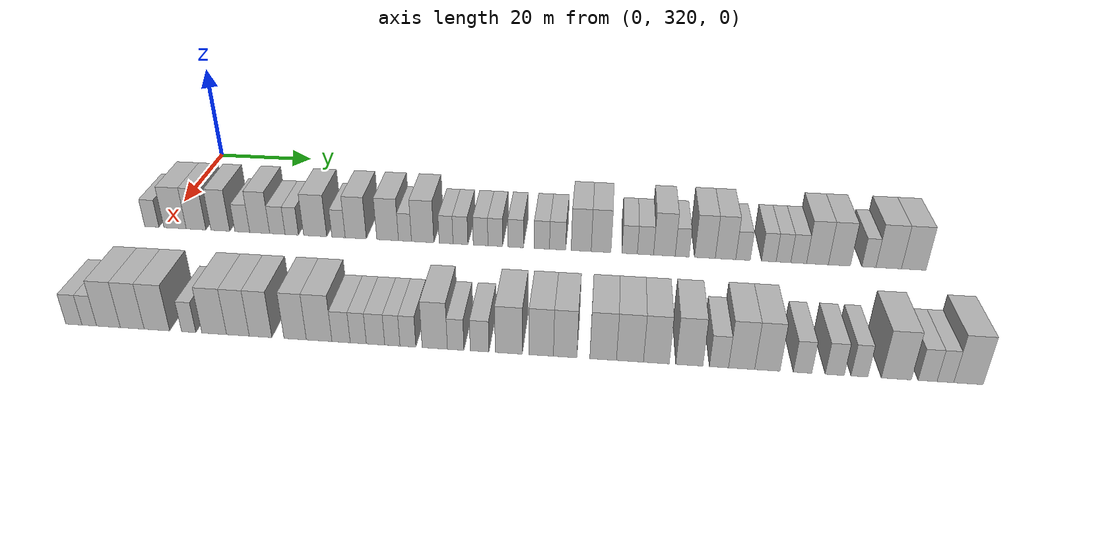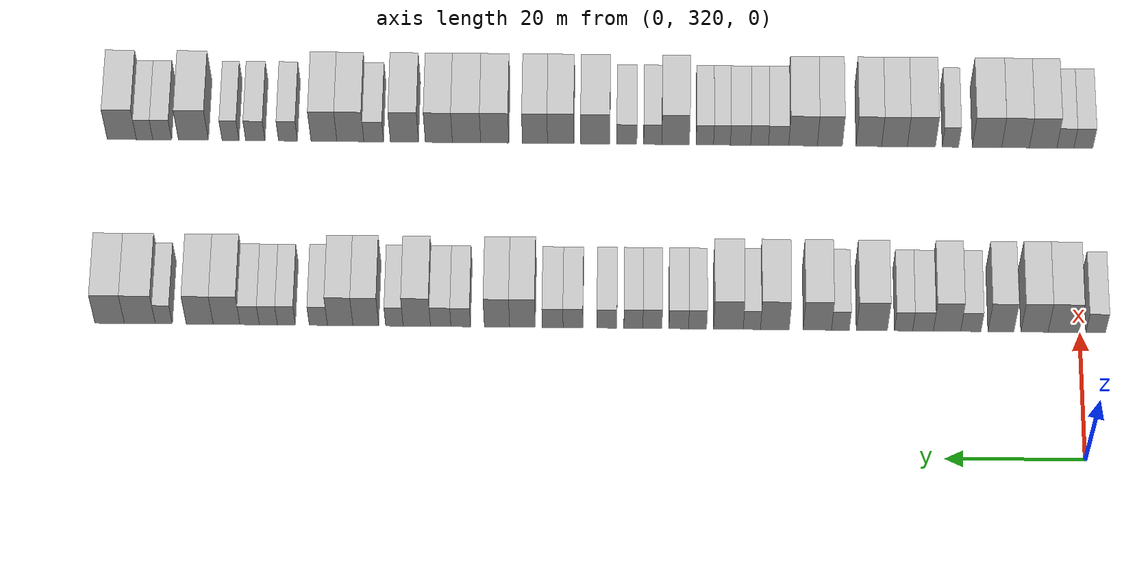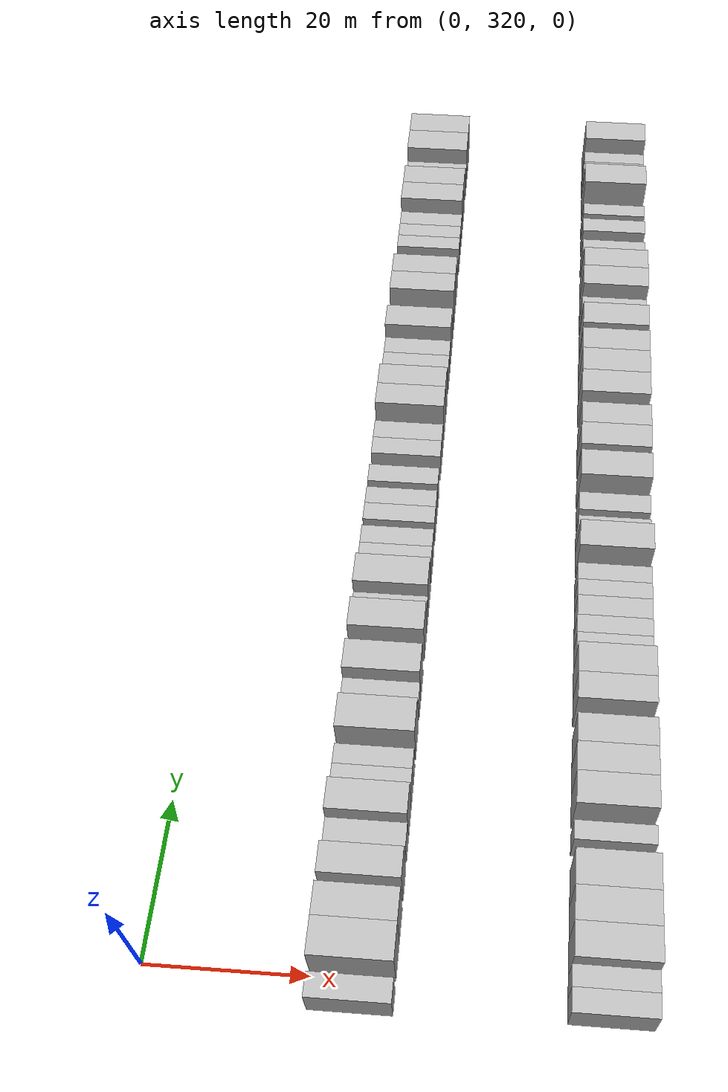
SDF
<sdf version="1.6">
 <world name="default">
  <model name="building_202">
   <static>1</static>
   <pose>25.0000 317.7668 0 0.000000 0.000000 0.000000</pose>
   <link name="link">
    <pose>0 0 3.00 0 0 0</pose>
    <collision name="collision"><geometry><box><size>10.0000 2.8190 6.0000</size></box></geometry></collision>
    <visual name="visual">
     <cast_shadows>0</cast_shadows>
     <geometry><box><size>10.0000 2.8190 6.0000</size></box></geometry>
     <material>
      <script>
       <uri>model://HANNAS_wall/materials/scripts</uri>
       <uri>model://HANNAS_wall/materials/textures</uri>
       <name>vrc/HANNAS_wall</name>
      </script>
     </material>
    </visual>
   </link>
  </model>
  <model name="building_203">
   <static>1</static>
   <pose>25.0000 322.3898 0 0.000000 0.000000 0.000000</pose>
   <link name="link">
    <pose>0 0 4.50 0 0 0</pose>
    <collision name="collision"><geometry><box><size>10.0000 4.4269 9.0000</size></box></geometry></collision>
    <visual name="visual">
     <cast_shadows>0</cast_shadows>
     <geometry><box><size>10.0000 4.4269 9.0000</size></box></geometry>
     <material>
      <script>
       <uri>model://HANNAS_wall/materials/scripts</uri>
       <uri>model://HANNAS_wall/materials/textures</uri>
       <name>vrc/HANNAS_wall</name>
      </script>
     </material>
    </visual>
   </link>
  </model>
  <model name="building_204">
   <static>1</static>
   <pose>25.0000 326.5541 0 0.000000 0.000000 0.000000</pose>
   <link name="link">
    <pose>0 0 4.50 0 0 0</pose>
    <collision name="collision"><geometry><box><size>10.0000 3.9018 9.0000</size></box></geometry></collision>
    <visual name="visual">
     <cast_shadows>0</cast_shadows>
     <geometry><box><size>10.0000 3.9018 9.0000</size></box></geometry>
     <material>
      <script>
       <uri>model://HANNAS_wall/materials/scripts</uri>
       <uri>model://HANNAS_wall/materials/textures</uri>
       <name>vrc/HANNAS_wall</name>
      </script>
     </material>
    </visual>
   </link>
  </model>
  <model name="building_205">
   <static>1</static>
   <pose>25.0000 331.3632 0 0.000000 0.000000 0.000000</pose>
   <link name="link">
    <pose>0 0 4.50 0 0 0</pose>
    <collision name="collision"><geometry><box><size>10.0000 3.7164 9.0000</size></box></geometry></collision>
    <visual name="visual">
     <cast_shadows>0</cast_shadows>
     <geometry><box><size>10.0000 3.7164 9.0000</size></box></geometry>
     <material>
      <script>
       <uri>model://HANNAS_wall/materials/scripts</uri>
       <uri>model://HANNAS_wall/materials/textures</uri>
       <name>vrc/HANNAS_wall</name>
      </script>
     </material>
    </visual>
   </link>
  </model>
  <model name="building_206">
   <static>1</static>
   <pose>25.0000 335.6766 0 0.000000 0.000000 0.000000</pose>
   <link name="link">
    <pose>0 0 3.00 0 0 0</pose>
    <collision name="collision"><geometry><box><size>10.0000 2.9102 6.0000</size></box></geometry></collision>
    <visual name="visual">
     <cast_shadows>0</cast_shadows>
     <geometry><box><size>10.0000 2.9102 6.0000</size></box></geometry>
     <material>
      <script>
       <uri>model://HANNAS_wall/materials/scripts</uri>
       <uri>model://HANNAS_wall/materials/textures</uri>
       <name>vrc/HANNAS_wall</name>
      </script>
     </material>
    </visual>
   </link>
  </model>
  <model name="building_207">
   <static>1</static>
   <pose>25.0000 339.0856 0 0.000000 0.000000 0.000000</pose>
   <link name="link">
    <pose>0 0 4.50 0 0 0</pose>
    <collision name="collision"><geometry><box><size>10.0000 3.9078 9.0000</size></box></geometry></collision>
    <visual name="visual">
     <cast_shadows>0</cast_shadows>
     <geometry><box><size>10.0000 3.9078 9.0000</size></box></geometry>
     <material>
      <script>
       <uri>model://HANNAS_wall/materials/scripts</uri>
       <uri>model://HANNAS_wall/materials/textures</uri>
       <name>vrc/HANNAS_wall</name>
      </script>
     </material>
    </visual>
   </link>
  </model>
  <model name="building_208">
   <static>1</static>
   <pose>25.0000 342.5338 0 0.000000 0.000000 0.000000</pose>
   <link name="link">
    <pose>0 0 3.00 0 0 0</pose>
    <collision name="collision"><geometry><box><size>10.0000 2.9886 6.0000</size></box></geometry></collision>
    <visual name="visual">
     <cast_shadows>0</cast_shadows>
     <geometry><box><size>10.0000 2.9886 6.0000</size></box></geometry>
     <material>
      <script>
       <uri>model://HANNAS_wall/materials/scripts</uri>
       <uri>model://HANNAS_wall/materials/textures</uri>
       <name>vrc/HANNAS_wall</name>
      </script>
     </material>
    </visual>
   </link>
  </model>
  <model name="building_209">
   <static>1</static>
   <pose>25.0000 345.3355 0 0.000000 0.000000 0.000000</pose>
   <link name="link">
    <pose>0 0 3.00 0 0 0</pose>
    <collision name="collision"><geometry><box><size>10.0000 2.6150 6.0000</size></box></geometry></collision>
    <visual name="visual">
     <cast_shadows>0</cast_shadows>
     <geometry><box><size>10.0000 2.6150 6.0000</size></box></geometry>
     <material>
      <script>
       <uri>model://HANNAS_wall/materials/scripts</uri>
       <uri>model://HANNAS_wall/materials/textures</uri>
       <name>vrc/HANNAS_wall</name>
      </script>
     </material>
    </visual>
   </link>
  </model>
  <model name="building_210">
   <static>1</static>
   <pose>25.0000 349.8770 0 0.000000 0.000000 0.000000</pose>
   <link name="link">
    <pose>0 0 4.50 0 0 0</pose>
    <collision name="collision"><geometry><box><size>10.0000 4.4678 9.0000</size></box></geometry></collision>
    <visual name="visual">
     <cast_shadows>0</cast_shadows>
     <geometry><box><size>10.0000 4.4678 9.0000</size></box></geometry>
     <material>
      <script>
       <uri>model://HANNAS_wall/materials/scripts</uri>
       <uri>model://HANNAS_wall/materials/textures</uri>
       <name>vrc/HANNAS_wall</name>
      </script>
     </material>
    </visual>
   </link>
  </model>
  <model name="building_211">
   <static>1</static>
   <pose>25.0000 354.3916 0 0.000000 0.000000 0.000000</pose>
   <link name="link">
    <pose>0 0 3.00 0 0 0</pose>
    <collision name="collision"><geometry><box><size>10.0000 2.5615 6.0000</size></box></geometry></collision>
    <visual name="visual">
     <cast_shadows>0</cast_shadows>
     <geometry><box><size>10.0000 2.5615 6.0000</size></box></geometry>
     <material>
      <script>
       <uri>model://HANNAS_wall/materials/scripts</uri>
       <uri>model://HANNAS_wall/materials/textures</uri>
       <name>vrc/HANNAS_wall</name>
      </script>
     </material>
    </visual>
   </link>
  </model>
  <model name="building_212">
   <static>1</static>
   <pose>25.0000 357.7027 0 0.000000 0.000000 0.000000</pose>
   <link name="link">
    <pose>0 0 4.50 0 0 0</pose>
    <collision name="collision"><geometry><box><size>10.0000 4.0606 9.0000</size></box></geometry></collision>
    <visual name="visual">
     <cast_shadows>0</cast_shadows>
     <geometry><box><size>10.0000 4.0606 9.0000</size></box></geometry>
     <material>
      <script>
       <uri>model://HANNAS_wall/materials/scripts</uri>
       <uri>model://HANNAS_wall/materials/textures</uri>
       <name>vrc/HANNAS_wall</name>
      </script>
     </material>
    </visual>
   </link>
  </model>
  <model name="building_213">
   <static>1</static>
   <pose>25.0000 363.8024 0 0.000000 0.000000 0.000000</pose>
   <link name="link">
    <pose>0 0 4.50 0 0 0</pose>
    <collision name="collision"><geometry><box><size>10.0000 4.1388 9.0000</size></box></geometry></collision>
    <visual name="visual">
     <cast_shadows>0</cast_shadows>
     <geometry><box><size>10.0000 4.1388 9.0000</size></box></geometry>
     <material>
      <script>
       <uri>model://HANNAS_wall/materials/scripts</uri>
       <uri>model://HANNAS_wall/materials/textures</uri>
       <name>vrc/HANNAS_wall</name>
      </script>
     </material>
    </visual>
   </link>
  </model>
  <model name="building_214">
   <static>1</static>
   <pose>25.0000 367.1085 0 0.000000 0.000000 0.000000</pose>
   <link name="link">
    <pose>0 0 3.00 0 0 0</pose>
    <collision name="collision"><geometry><box><size>10.0000 2.4736 6.0000</size></box></geometry></collision>
    <visual name="visual">
     <cast_shadows>0</cast_shadows>
     <geometry><box><size>10.0000 2.4736 6.0000</size></box></geometry>
     <material>
      <script>
       <uri>model://HANNAS_wall/materials/scripts</uri>
       <uri>model://HANNAS_wall/materials/textures</uri>
       <name>vrc/HANNAS_wall</name>
      </script>
     </material>
    </visual>
   </link>
  </model>
  <model name="building_215">
   <static>1</static>
   <pose>25.0000 370.4704 0 0.000000 0.000000 0.000000</pose>
   <link name="link">
    <pose>0 0 4.50 0 0 0</pose>
    <collision name="collision"><geometry><box><size>10.0000 4.2502 9.0000</size></box></geometry></collision>
    <visual name="visual">
     <cast_shadows>0</cast_shadows>
     <geometry><box><size>10.0000 4.2502 9.0000</size></box></geometry>
     <material>
      <script>
       <uri>model://HANNAS_wall/materials/scripts</uri>
       <uri>model://HANNAS_wall/materials/textures</uri>
       <name>vrc/HANNAS_wall</name>
      </script>
     </material>
    </visual>
   </link>
  </model>
  <model name="building_216">
   <static>1</static>
   <pose>25.0000 374.8957 0 0.000000 0.000000 0.000000</pose>
   <link name="link">
    <pose>0 0 3.00 0 0 0</pose>
    <collision name="collision"><geometry><box><size>10.0000 2.6004 6.0000</size></box></geometry></collision>
    <visual name="visual">
     <cast_shadows>0</cast_shadows>
     <geometry><box><size>10.0000 2.6004 6.0000</size></box></geometry>
     <material>
      <script>
       <uri>model://HANNAS_wall/materials/scripts</uri>
       <uri>model://HANNAS_wall/materials/textures</uri>
       <name>vrc/HANNAS_wall</name>
      </script>
     </material>
    </visual>
   </link>
  </model>
  <model name="building_217">
   <static>1</static>
   <pose>25.0000 377.5998 0 0.000000 0.000000 0.000000</pose>
   <link name="link">
    <pose>0 0 3.00 0 0 0</pose>
    <collision name="collision"><geometry><box><size>10.0000 2.8076 6.0000</size></box></geometry></collision>
    <visual name="visual">
     <cast_shadows>0</cast_shadows>
     <geometry><box><size>10.0000 2.8076 6.0000</size></box></geometry>
     <material>
      <script>
       <uri>model://HANNAS_wall/materials/scripts</uri>
       <uri>model://HANNAS_wall/materials/textures</uri>
       <name>vrc/HANNAS_wall</name>
      </script>
     </material>
    </visual>
   </link>
  </model>
  <model name="building_218">
   <static>1</static>
   <pose>25.0000 381.3769 0 0.000000 0.000000 0.000000</pose>
   <link name="link">
    <pose>0 0 3.00 0 0 0</pose>
    <collision name="collision"><geometry><box><size>10.0000 2.7467 6.0000</size></box></geometry></collision>
    <visual name="visual">
     <cast_shadows>0</cast_shadows>
     <geometry><box><size>10.0000 2.7467 6.0000</size></box></geometry>
     <material>
      <script>
       <uri>model://HANNAS_wall/materials/scripts</uri>
       <uri>model://HANNAS_wall/materials/textures</uri>
       <name>vrc/HANNAS_wall</name>
      </script>
     </material>
    </visual>
   </link>
  </model>
  <model name="building_219">
   <static>1</static>
   <pose>25.0000 384.1134 0 0.000000 0.000000 0.000000</pose>
   <link name="link">
    <pose>0 0 3.00 0 0 0</pose>
    <collision name="collision"><geometry><box><size>10.0000 2.7263 6.0000</size></box></geometry></collision>
    <visual name="visual">
     <cast_shadows>0</cast_shadows>
     <geometry><box><size>10.0000 2.7263 6.0000</size></box></geometry>
     <material>
      <script>
       <uri>model://HANNAS_wall/materials/scripts</uri>
       <uri>model://HANNAS_wall/materials/textures</uri>
       <name>vrc/HANNAS_wall</name>
      </script>
     </material>
    </visual>
   </link>
  </model>
  <model name="building_220">
   <static>1</static>
   <pose>25.0000 387.9141 0 0.000000 0.000000 0.000000</pose>
   <link name="link">
    <pose>0 0 3.00 0 0 0</pose>
    <collision name="collision"><geometry><box><size>10.0000 2.8752 6.0000</size></box></geometry></collision>
    <visual name="visual">
     <cast_shadows>0</cast_shadows>
     <geometry><box><size>10.0000 2.8752 6.0000</size></box></geometry>
     <material>
      <script>
       <uri>model://HANNAS_wall/materials/scripts</uri>
       <uri>model://HANNAS_wall/materials/textures</uri>
       <name>vrc/HANNAS_wall</name>
      </script>
     </material>
    </visual>
   </link>
  </model>
  <model name="building_221">
   <static>1</static>
   <pose>25.0000 392.7794 0 0.000000 0.000000 0.000000</pose>
   <link name="link">
    <pose>0 0 3.00 0 0 0</pose>
    <collision name="collision"><geometry><box><size>10.0000 2.8553 6.0000</size></box></geometry></collision>
    <visual name="visual">
     <cast_shadows>0</cast_shadows>
     <geometry><box><size>10.0000 2.8553 6.0000</size></box></geometry>
     <material>
      <script>
       <uri>model://HANNAS_wall/materials/scripts</uri>
       <uri>model://HANNAS_wall/materials/textures</uri>
       <name>vrc/HANNAS_wall</name>
      </script>
     </material>
    </visual>
   </link>
  </model>
  <model name="building_222">
   <static>1</static>
   <pose>25.0000 395.7024 0 0.000000 0.000000 0.000000</pose>
   <link name="link">
    <pose>0 0 3.00 0 0 0</pose>
    <collision name="collision"><geometry><box><size>10.0000 2.9906 6.0000</size></box></geometry></collision>
    <visual name="visual">
     <cast_shadows>0</cast_shadows>
     <geometry><box><size>10.0000 2.9906 6.0000</size></box></geometry>
     <material>
      <script>
       <uri>model://HANNAS_wall/materials/scripts</uri>
       <uri>model://HANNAS_wall/materials/textures</uri>
       <name>vrc/HANNAS_wall</name>
      </script>
     </material>
    </visual>
   </link>
  </model>
  <model name="building_223">
   <static>1</static>
   <pose>25.0000 400.0385 0 0.000000 0.000000 0.000000</pose>
   <link name="link">
    <pose>0 0 4.50 0 0 0</pose>
    <collision name="collision"><geometry><box><size>10.0000 3.6818 9.0000</size></box></geometry></collision>
    <visual name="visual">
     <cast_shadows>0</cast_shadows>
     <geometry><box><size>10.0000 3.6818 9.0000</size></box></geometry>
     <material>
      <script>
       <uri>model://HANNAS_wall/materials/scripts</uri>
       <uri>model://HANNAS_wall/materials/textures</uri>
       <name>vrc/HANNAS_wall</name>
      </script>
     </material>
    </visual>
   </link>
  </model>
  <model name="building_224">
   <static>1</static>
   <pose>25.0000 403.6879 0 0.000000 0.000000 0.000000</pose>
   <link name="link">
    <pose>0 0 4.50 0 0 0</pose>
    <collision name="collision"><geometry><box><size>10.0000 3.6170 9.0000</size></box></geometry></collision>
    <visual name="visual">
     <cast_shadows>0</cast_shadows>
     <geometry><box><size>10.0000 3.6170 9.0000</size></box></geometry>
     <material>
      <script>
       <uri>model://HANNAS_wall/materials/scripts</uri>
       <uri>model://HANNAS_wall/materials/textures</uri>
       <name>vrc/HANNAS_wall</name>
      </script>
     </material>
    </visual>
   </link>
  </model>
  <model name="building_225">
   <static>1</static>
   <pose>25.0000 408.9027 0 0.000000 0.000000 0.000000</pose>
   <link name="link">
    <pose>0 0 3.00 0 0 0</pose>
    <collision name="collision"><geometry><box><size>10.0000 2.8125 6.0000</size></box></geometry></collision>
    <visual name="visual">
     <cast_shadows>0</cast_shadows>
     <geometry><box><size>10.0000 2.8125 6.0000</size></box></geometry>
     <material>
      <script>
       <uri>model://HANNAS_wall/materials/scripts</uri>
       <uri>model://HANNAS_wall/materials/textures</uri>
       <name>vrc/HANNAS_wall</name>
      </script>
     </material>
    </visual>
   </link>
  </model>
  <model name="building_226">
   <static>1</static>
   <pose>25.0000 411.7821 0 0.000000 0.000000 0.000000</pose>
   <link name="link">
    <pose>0 0 3.00 0 0 0</pose>
    <collision name="collision"><geometry><box><size>10.0000 2.9464 6.0000</size></box></geometry></collision>
    <visual name="visual">
     <cast_shadows>0</cast_shadows>
     <geometry><box><size>10.0000 2.9464 6.0000</size></box></geometry>
     <material>
      <script>
       <uri>model://HANNAS_wall/materials/scripts</uri>
       <uri>model://HANNAS_wall/materials/textures</uri>
       <name>vrc/HANNAS_wall</name>
      </script>
     </material>
    </visual>
   </link>
  </model>
  <model name="building_227">
   <static>1</static>
   <pose>25.0000 415.2182 0 0.000000 0.000000 0.000000</pose>
   <link name="link">
    <pose>0 0 4.50 0 0 0</pose>
    <collision name="collision"><geometry><box><size>10.0000 3.9257 9.0000</size></box></geometry></collision>
    <visual name="visual">
     <cast_shadows>0</cast_shadows>
     <geometry><box><size>10.0000 3.9257 9.0000</size></box></geometry>
     <material>
      <script>
       <uri>model://HANNAS_wall/materials/scripts</uri>
       <uri>model://HANNAS_wall/materials/textures</uri>
       <name>vrc/HANNAS_wall</name>
      </script>
     </material>
    </visual>
   </link>
  </model>
  <model name="building_228">
   <static>1</static>
   <pose>25.0000 418.4320 0 0.000000 0.000000 0.000000</pose>
   <link name="link">
    <pose>0 0 3.00 0 0 0</pose>
    <collision name="collision"><geometry><box><size>10.0000 2.5021 6.0000</size></box></geometry></collision>
    <visual name="visual">
     <cast_shadows>0</cast_shadows>
     <geometry><box><size>10.0000 2.5021 6.0000</size></box></geometry>
     <material>
      <script>
       <uri>model://HANNAS_wall/materials/scripts</uri>
       <uri>model://HANNAS_wall/materials/textures</uri>
       <name>vrc/HANNAS_wall</name>
      </script>
     </material>
    </visual>
   </link>
  </model>
  <model name="building_229">
   <static>1</static>
   <pose>25.0000 422.5367 0 0.000000 0.000000 0.000000</pose>
   <link name="link">
    <pose>0 0 4.50 0 0 0</pose>
    <collision name="collision"><geometry><box><size>10.0000 3.7072 9.0000</size></box></geometry></collision>
    <visual name="visual">
     <cast_shadows>0</cast_shadows>
     <geometry><box><size>10.0000 3.7072 9.0000</size></box></geometry>
     <material>
      <script>
       <uri>model://HANNAS_wall/materials/scripts</uri>
       <uri>model://HANNAS_wall/materials/textures</uri>
       <name>vrc/HANNAS_wall</name>
      </script>
     </material>
    </visual>
   </link>
  </model>
  <model name="building_230">
   <static>1</static>
   <pose>25.0000 426.2238 0 0.000000 0.000000 0.000000</pose>
   <link name="link">
    <pose>0 0 4.50 0 0 0</pose>
    <collision name="collision"><geometry><box><size>10.0000 3.6669 9.0000</size></box></geometry></collision>
    <visual name="visual">
     <cast_shadows>0</cast_shadows>
     <geometry><box><size>10.0000 3.6669 9.0000</size></box></geometry>
     <material>
      <script>
       <uri>model://HANNAS_wall/materials/scripts</uri>
       <uri>model://HANNAS_wall/materials/textures</uri>
       <name>vrc/HANNAS_wall</name>
      </script>
     </material>
    </visual>
   </link>
  </model>
  <model name="building_231">
   <static>1</static>
   <pose>25.0000 429.3576 0 0.000000 0.000000 0.000000</pose>
   <link name="link">
    <pose>0 0 3.00 0 0 0</pose>
    <collision name="collision"><geometry><box><size>10.0000 2.6007 6.0000</size></box></geometry></collision>
    <visual name="visual">
     <cast_shadows>0</cast_shadows>
     <geometry><box><size>10.0000 2.6007 6.0000</size></box></geometry>
     <material>
      <script>
       <uri>model://HANNAS_wall/materials/scripts</uri>
       <uri>model://HANNAS_wall/materials/textures</uri>
       <name>vrc/HANNAS_wall</name>
      </script>
     </material>
    </visual>
   </link>
  </model>
  <model name="building_232">
   <static>1</static>
   <pose>25.0000 433.9490 0 0.000000 0.000000 0.000000</pose>
   <link name="link">
    <pose>0 0 3.00 0 0 0</pose>
    <collision name="collision"><geometry><box><size>10.0000 2.5821 6.0000</size></box></geometry></collision>
    <visual name="visual">
     <cast_shadows>0</cast_shadows>
     <geometry><box><size>10.0000 2.5821 6.0000</size></box></geometry>
     <material>
      <script>
       <uri>model://HANNAS_wall/materials/scripts</uri>
       <uri>model://HANNAS_wall/materials/textures</uri>
       <name>vrc/HANNAS_wall</name>
      </script>
     </material>
    </visual>
   </link>
  </model>
  <model name="building_233">
   <static>1</static>
   <pose>25.0000 436.5443 0 0.000000 0.000000 0.000000</pose>
   <link name="link">
    <pose>0 0 3.00 0 0 0</pose>
    <collision name="collision"><geometry><box><size>10.0000 2.6086 6.0000</size></box></geometry></collision>
    <visual name="visual">
     <cast_shadows>0</cast_shadows>
     <geometry><box><size>10.0000 2.6086 6.0000</size></box></geometry>
     <material>
      <script>
       <uri>model://HANNAS_wall/materials/scripts</uri>
       <uri>model://HANNAS_wall/materials/textures</uri>
       <name>vrc/HANNAS_wall</name>
      </script>
     </material>
    </visual>
   </link>
  </model>
  <model name="building_234">
   <static>1</static>
   <pose>25.0000 439.2364 0 0.000000 0.000000 0.000000</pose>
   <link name="link">
    <pose>0 0 3.00 0 0 0</pose>
    <collision name="collision"><geometry><box><size>10.0000 2.7756 6.0000</size></box></geometry></collision>
    <visual name="visual">
     <cast_shadows>0</cast_shadows>
     <geometry><box><size>10.0000 2.7756 6.0000</size></box></geometry>
     <material>
      <script>
       <uri>model://HANNAS_wall/materials/scripts</uri>
       <uri>model://HANNAS_wall/materials/textures</uri>
       <name>vrc/HANNAS_wall</name>
      </script>
     </material>
    </visual>
   </link>
  </model>
  <model name="building_235">
   <static>1</static>
   <pose>25.0000 442.5438 0 0.000000 0.000000 0.000000</pose>
   <link name="link">
    <pose>0 0 4.50 0 0 0</pose>
    <collision name="collision"><geometry><box><size>10.0000 3.8392 9.0000</size></box></geometry></collision>
    <visual name="visual">
     <cast_shadows>0</cast_shadows>
     <geometry><box><size>10.0000 3.8392 9.0000</size></box></geometry>
     <material>
      <script>
       <uri>model://HANNAS_wall/materials/scripts</uri>
       <uri>model://HANNAS_wall/materials/textures</uri>
       <name>vrc/HANNAS_wall</name>
      </script>
     </material>
    </visual>
   </link>
  </model>
  <model name="building_236">
   <static>1</static>
   <pose>25.0000 446.4011 0 0.000000 0.000000 0.000000</pose>
   <link name="link">
    <pose>0 0 4.50 0 0 0</pose>
    <collision name="collision"><geometry><box><size>10.0000 3.8756 9.0000</size></box></geometry></collision>
    <visual name="visual">
     <cast_shadows>0</cast_shadows>
     <geometry><box><size>10.0000 3.8756 9.0000</size></box></geometry>
     <material>
      <script>
       <uri>model://HANNAS_wall/materials/scripts</uri>
       <uri>model://HANNAS_wall/materials/textures</uri>
       <name>vrc/HANNAS_wall</name>
      </script>
     </material>
    </visual>
   </link>
  </model>
  <model name="building_237">
   <static>1</static>
   <pose>25.0000 451.5603 0 0.000000 0.000000 0.000000</pose>
   <link name="link">
    <pose>0 0 3.00 0 0 0</pose>
    <collision name="collision"><geometry><box><size>10.0000 2.4427 6.0000</size></box></geometry></collision>
    <visual name="visual">
     <cast_shadows>0</cast_shadows>
     <geometry><box><size>10.0000 2.4427 6.0000</size></box></geometry>
     <material>
      <script>
       <uri>model://HANNAS_wall/materials/scripts</uri>
       <uri>model://HANNAS_wall/materials/textures</uri>
       <name>vrc/HANNAS_wall</name>
      </script>
     </material>
    </visual>
   </link>
  </model>
  <model name="building_238">
   <static>1</static>
   <pose>25.0000 455.0014 0 0.000000 0.000000 0.000000</pose>
   <link name="link">
    <pose>0 0 4.50 0 0 0</pose>
    <collision name="collision"><geometry><box><size>10.0000 4.4395 9.0000</size></box></geometry></collision>
    <visual name="visual">
     <cast_shadows>0</cast_shadows>
     <geometry><box><size>10.0000 4.4395 9.0000</size></box></geometry>
     <material>
      <script>
       <uri>model://HANNAS_wall/materials/scripts</uri>
       <uri>model://HANNAS_wall/materials/textures</uri>
       <name>vrc/HANNAS_wall</name>
      </script>
     </material>
    </visual>
   </link>
  </model>
  <model name="building_239">
   <static>1</static>
   <pose>25.0000 459.3410 0 0.000000 0.000000 0.000000</pose>
   <link name="link">
    <pose>0 0 4.50 0 0 0</pose>
    <collision name="collision"><geometry><box><size>10.0000 4.2398 9.0000</size></box></geometry></collision>
    <visual name="visual">
     <cast_shadows>0</cast_shadows>
     <geometry><box><size>10.0000 4.2398 9.0000</size></box></geometry>
     <material>
      <script>
       <uri>model://HANNAS_wall/materials/scripts</uri>
       <uri>model://HANNAS_wall/materials/textures</uri>
       <name>vrc/HANNAS_wall</name>
      </script>
     </material>
    </visual>
   </link>
  </model>
  <model name="building_443">
   <static>1</static>
   <pose>55.0000 318.2949 0 0.000000 0.000000 0.000000</pose>
   <link name="link">
    <pose>0 0 3.00 0 0 0</pose>
    <collision name="collision"><geometry><box><size>10.0000 2.7762 6.0000</size></box></geometry></collision>
    <visual name="visual">
     <cast_shadows>0</cast_shadows>
     <geometry><box><size>10.0000 2.7762 6.0000</size></box></geometry>
     <material>
      <script>
       <uri>model://HANNAS_wall/materials/scripts</uri>
       <uri>model://HANNAS_wall/materials/textures</uri>
       <name>vrc/HANNAS_wall</name>
      </script>
     </material>
    </visual>
   </link>
  </model>
  <model name="building_444">
   <static>1</static>
   <pose>55.0000 320.9313 0 0.000000 0.000000 0.000000</pose>
   <link name="link">
    <pose>0 0 3.00 0 0 0</pose>
    <collision name="collision"><geometry><box><size>10.0000 2.4966 6.0000</size></box></geometry></collision>
    <visual name="visual">
     <cast_shadows>0</cast_shadows>
     <geometry><box><size>10.0000 2.4966 6.0000</size></box></geometry>
     <material>
      <script>
       <uri>model://HANNAS_wall/materials/scripts</uri>
       <uri>model://HANNAS_wall/materials/textures</uri>
       <name>vrc/HANNAS_wall</name>
      </script>
     </material>
    </visual>
   </link>
  </model>
  <model name="building_445">
   <static>1</static>
   <pose>55.0000 324.2052 0 0.000000 0.000000 0.000000</pose>
   <link name="link">
    <pose>0 0 4.50 0 0 0</pose>
    <collision name="collision"><geometry><box><size>10.0000 4.0511 9.0000</size></box></geometry></collision>
    <visual name="visual">
     <cast_shadows>0</cast_shadows>
     <geometry><box><size>10.0000 4.0511 9.0000</size></box></geometry>
     <material>
      <script>
       <uri>model://HANNAS_wall/materials/scripts</uri>
       <uri>model://HANNAS_wall/materials/textures</uri>
       <name>vrc/HANNAS_wall</name>
      </script>
     </material>
    </visual>
   </link>
  </model>
  <model name="building_446">
   <static>1</static>
   <pose>55.0000 328.2565 0 0.000000 0.000000 0.000000</pose>
   <link name="link">
    <pose>0 0 4.50 0 0 0</pose>
    <collision name="collision"><geometry><box><size>10.0000 4.0516 9.0000</size></box></geometry></collision>
    <visual name="visual">
     <cast_shadows>0</cast_shadows>
     <geometry><box><size>10.0000 4.0516 9.0000</size></box></geometry>
     <material>
      <script>
       <uri>model://HANNAS_wall/materials/scripts</uri>
       <uri>model://HANNAS_wall/materials/textures</uri>
       <name>vrc/HANNAS_wall</name>
      </script>
     </material>
    </visual>
   </link>
  </model>
  <model name="building_447">
   <static>1</static>
   <pose>55.0000 332.4387 0 0.000000 0.000000 0.000000</pose>
   <link name="link">
    <pose>0 0 4.50 0 0 0</pose>
    <collision name="collision"><geometry><box><size>10.0000 4.3127 9.0000</size></box></geometry></collision>
    <visual name="visual">
     <cast_shadows>0</cast_shadows>
     <geometry><box><size>10.0000 4.3127 9.0000</size></box></geometry>
     <material>
      <script>
       <uri>model://HANNAS_wall/materials/scripts</uri>
       <uri>model://HANNAS_wall/materials/textures</uri>
       <name>vrc/HANNAS_wall</name>
      </script>
     </material>
    </visual>
   </link>
  </model>
  <model name="building_448">
   <static>1</static>
   <pose>55.0000 337.7976 0 0.000000 0.000000 0.000000</pose>
   <link name="link">
    <pose>0 0 3.00 0 0 0</pose>
    <collision name="collision"><geometry><box><size>10.0000 2.4050 6.0000</size></box></geometry></collision>
    <visual name="visual">
     <cast_shadows>0</cast_shadows>
     <geometry><box><size>10.0000 2.4050 6.0000</size></box></geometry>
     <material>
      <script>
       <uri>model://HANNAS_wall/materials/scripts</uri>
       <uri>model://HANNAS_wall/materials/textures</uri>
       <name>vrc/HANNAS_wall</name>
      </script>
     </material>
    </visual>
   </link>
  </model>
  <model name="building_449">
   <static>1</static>
   <pose>55.0000 342.0600 0 0.000000 0.000000 0.000000</pose>
   <link name="link">
    <pose>0 0 4.50 0 0 0</pose>
    <collision name="collision"><geometry><box><size>10.0000 4.1200 9.0000</size></box></geometry></collision>
    <visual name="visual">
     <cast_shadows>0</cast_shadows>
     <geometry><box><size>10.0000 4.1200 9.0000</size></box></geometry>
     <material>
      <script>
       <uri>model://HANNAS_wall/materials/scripts</uri>
       <uri>model://HANNAS_wall/materials/textures</uri>
       <name>vrc/HANNAS_wall</name>
      </script>
     </material>
    </visual>
   </link>
  </model>
  <model name="building_450">
   <static>1</static>
   <pose>55.0000 346.0117 0 0.000000 0.000000 0.000000</pose>
   <link name="link">
    <pose>0 0 4.50 0 0 0</pose>
    <collision name="collision"><geometry><box><size>10.0000 3.7834 9.0000</size></box></geometry></collision>
    <visual name="visual">
     <cast_shadows>0</cast_shadows>
     <geometry><box><size>10.0000 3.7834 9.0000</size></box></geometry>
     <material>
      <script>
       <uri>model://HANNAS_wall/materials/scripts</uri>
       <uri>model://HANNAS_wall/materials/textures</uri>
       <name>vrc/HANNAS_wall</name>
      </script>
     </material>
    </visual>
   </link>
  </model>
  <model name="building_451">
   <static>1</static>
   <pose>55.0000 349.7788 0 0.000000 0.000000 0.000000</pose>
   <link name="link">
    <pose>0 0 4.50 0 0 0</pose>
    <collision name="collision"><geometry><box><size>10.0000 3.7508 9.0000</size></box></geometry></collision>
    <visual name="visual">
     <cast_shadows>0</cast_shadows>
     <geometry><box><size>10.0000 3.7508 9.0000</size></box></geometry>
     <material>
      <script>
       <uri>model://HANNAS_wall/materials/scripts</uri>
       <uri>model://HANNAS_wall/materials/textures</uri>
       <name>vrc/HANNAS_wall</name>
      </script>
     </material>
    </visual>
   </link>
  </model>
  <model name="building_452">
   <static>1</static>
   <pose>55.0000 355.4905 0 0.000000 0.000000 0.000000</pose>
   <link name="link">
    <pose>0 0 4.50 0 0 0</pose>
    <collision name="collision"><geometry><box><size>10.0000 3.6726 9.0000</size></box></geometry></collision>
    <visual name="visual">
     <cast_shadows>0</cast_shadows>
     <geometry><box><size>10.0000 3.6726 9.0000</size></box></geometry>
     <material>
      <script>
       <uri>model://HANNAS_wall/materials/scripts</uri>
       <uri>model://HANNAS_wall/materials/textures</uri>
       <name>vrc/HANNAS_wall</name>
      </script>
     </material>
    </visual>
   </link>
  </model>
  <model name="building_453">
   <static>1</static>
   <pose>55.0000 359.4251 0 0.000000 0.000000 0.000000</pose>
   <link name="link">
    <pose>0 0 4.50 0 0 0</pose>
    <collision name="collision"><geometry><box><size>10.0000 4.1965 9.0000</size></box></geometry></collision>
    <visual name="visual">
     <cast_shadows>0</cast_shadows>
     <geometry><box><size>10.0000 4.1965 9.0000</size></box></geometry>
     <material>
      <script>
       <uri>model://HANNAS_wall/materials/scripts</uri>
       <uri>model://HANNAS_wall/materials/textures</uri>
       <name>vrc/HANNAS_wall</name>
      </script>
     </material>
    </visual>
   </link>
  </model>
  <model name="building_454">
   <static>1</static>
   <pose>55.0000 363.0143 0 0.000000 0.000000 0.000000</pose>
   <link name="link">
    <pose>0 0 3.00 0 0 0</pose>
    <collision name="collision"><geometry><box><size>10.0000 2.9819 6.0000</size></box></geometry></collision>
    <visual name="visual">
     <cast_shadows>0</cast_shadows>
     <geometry><box><size>10.0000 2.9819 6.0000</size></box></geometry>
     <material>
      <script>
       <uri>model://HANNAS_wall/materials/scripts</uri>
       <uri>model://HANNAS_wall/materials/textures</uri>
       <name>vrc/HANNAS_wall</name>
      </script>
     </material>
    </visual>
   </link>
  </model>
  <model name="building_455">
   <static>1</static>
   <pose>55.0000 365.8133 0 0.000000 0.000000 0.000000</pose>
   <link name="link">
    <pose>0 0 3.00 0 0 0</pose>
    <collision name="collision"><geometry><box><size>10.0000 2.6160 6.0000</size></box></geometry></collision>
    <visual name="visual">
     <cast_shadows>0</cast_shadows>
     <geometry><box><size>10.0000 2.6160 6.0000</size></box></geometry>
     <material>
      <script>
       <uri>model://HANNAS_wall/materials/scripts</uri>
       <uri>model://HANNAS_wall/materials/textures</uri>
       <name>vrc/HANNAS_wall</name>
      </script>
     </material>
    </visual>
   </link>
  </model>
  <model name="building_456">
   <static>1</static>
   <pose>55.0000 368.6112 0 0.000000 0.000000 0.000000</pose>
   <link name="link">
    <pose>0 0 3.00 0 0 0</pose>
    <collision name="collision"><geometry><box><size>10.0000 2.9798 6.0000</size></box></geometry></collision>
    <visual name="visual">
     <cast_shadows>0</cast_shadows>
     <geometry><box><size>10.0000 2.9798 6.0000</size></box></geometry>
     <material>
      <script>
       <uri>model://HANNAS_wall/materials/scripts</uri>
       <uri>model://HANNAS_wall/materials/textures</uri>
       <name>vrc/HANNAS_wall</name>
      </script>
     </material>
    </visual>
   </link>
  </model>
  <model name="building_457">
   <static>1</static>
   <pose>55.0000 371.3309 0 0.000000 0.000000 0.000000</pose>
   <link name="link">
    <pose>0 0 3.00 0 0 0</pose>
    <collision name="collision"><geometry><box><size>10.0000 2.4596 6.0000</size></box></geometry></collision>
    <visual name="visual">
     <cast_shadows>0</cast_shadows>
     <geometry><box><size>10.0000 2.4596 6.0000</size></box></geometry>
     <material>
      <script>
       <uri>model://HANNAS_wall/materials/scripts</uri>
       <uri>model://HANNAS_wall/materials/textures</uri>
       <name>vrc/HANNAS_wall</name>
      </script>
     </material>
    </visual>
   </link>
  </model>
  <model name="building_458">
   <static>1</static>
   <pose>55.0000 373.8410 0 0.000000 0.000000 0.000000</pose>
   <link name="link">
    <pose>0 0 3.00 0 0 0</pose>
    <collision name="collision"><geometry><box><size>10.0000 2.5605 6.0000</size></box></geometry></collision>
    <visual name="visual">
     <cast_shadows>0</cast_shadows>
     <geometry><box><size>10.0000 2.5605 6.0000</size></box></geometry>
     <material>
      <script>
       <uri>model://HANNAS_wall/materials/scripts</uri>
       <uri>model://HANNAS_wall/materials/textures</uri>
       <name>vrc/HANNAS_wall</name>
      </script>
     </material>
    </visual>
   </link>
  </model>
  <model name="building_459">
   <static>1</static>
   <pose>55.0000 378.1445 0 0.000000 0.000000 0.000000</pose>
   <link name="link">
    <pose>0 0 4.50 0 0 0</pose>
    <collision name="collision"><geometry><box><size>10.0000 4.0466 9.0000</size></box></geometry></collision>
    <visual name="visual">
     <cast_shadows>0</cast_shadows>
     <geometry><box><size>10.0000 4.0466 9.0000</size></box></geometry>
     <material>
      <script>
       <uri>model://HANNAS_wall/materials/scripts</uri>
       <uri>model://HANNAS_wall/materials/textures</uri>
       <name>vrc/HANNAS_wall</name>
      </script>
     </material>
    </visual>
   </link>
  </model>
  <model name="building_460">
   <static>1</static>
   <pose>55.0000 381.4868 0 0.000000 0.000000 0.000000</pose>
   <link name="link">
    <pose>0 0 3.00 0 0 0</pose>
    <collision name="collision"><geometry><box><size>10.0000 2.6381 6.0000</size></box></geometry></collision>
    <visual name="visual">
     <cast_shadows>0</cast_shadows>
     <geometry><box><size>10.0000 2.6381 6.0000</size></box></geometry>
     <material>
      <script>
       <uri>model://HANNAS_wall/materials/scripts</uri>
       <uri>model://HANNAS_wall/materials/textures</uri>
       <name>vrc/HANNAS_wall</name>
      </script>
     </material>
    </visual>
   </link>
  </model>
  <model name="building_461">
   <static>1</static>
   <pose>55.0000 385.2871 0 0.000000 0.000000 0.000000</pose>
   <link name="link">
    <pose>0 0 3.00 0 0 0</pose>
    <collision name="collision"><geometry><box><size>10.0000 2.9624 6.0000</size></box></geometry></collision>
    <visual name="visual">
     <cast_shadows>0</cast_shadows>
     <geometry><box><size>10.0000 2.9624 6.0000</size></box></geometry>
     <material>
      <script>
       <uri>model://HANNAS_wall/materials/scripts</uri>
       <uri>model://HANNAS_wall/materials/textures</uri>
       <name>vrc/HANNAS_wall</name>
      </script>
     </material>
    </visual>
   </link>
  </model>
  <model name="building_462">
   <static>1</static>
   <pose>55.0000 389.9071 0 0.000000 0.000000 0.000000</pose>
   <link name="link">
    <pose>0 0 4.50 0 0 0</pose>
    <collision name="collision"><geometry><box><size>10.0000 4.2776 9.0000</size></box></geometry></collision>
    <visual name="visual">
     <cast_shadows>0</cast_shadows>
     <geometry><box><size>10.0000 4.2776 9.0000</size></box></geometry>
     <material>
      <script>
       <uri>model://HANNAS_wall/materials/scripts</uri>
       <uri>model://HANNAS_wall/materials/textures</uri>
       <name>vrc/HANNAS_wall</name>
      </script>
     </material>
    </visual>
   </link>
  </model>
  <model name="building_463">
   <static>1</static>
   <pose>55.0000 394.9873 0 0.000000 0.000000 0.000000</pose>
   <link name="link">
    <pose>0 0 4.50 0 0 0</pose>
    <collision name="collision"><geometry><box><size>10.0000 3.8828 9.0000</size></box></geometry></collision>
    <visual name="visual">
     <cast_shadows>0</cast_shadows>
     <geometry><box><size>10.0000 3.8828 9.0000</size></box></geometry>
     <material>
      <script>
       <uri>model://HANNAS_wall/materials/scripts</uri>
       <uri>model://HANNAS_wall/materials/textures</uri>
       <name>vrc/HANNAS_wall</name>
      </script>
     </material>
    </visual>
   </link>
  </model>
  <model name="building_464">
   <static>1</static>
   <pose>55.0000 398.7656 0 0.000000 0.000000 0.000000</pose>
   <link name="link">
    <pose>0 0 4.50 0 0 0</pose>
    <collision name="collision"><geometry><box><size>10.0000 3.6738 9.0000</size></box></geometry></collision>
    <visual name="visual">
     <cast_shadows>0</cast_shadows>
     <geometry><box><size>10.0000 3.6738 9.0000</size></box></geometry>
     <material>
      <script>
       <uri>model://HANNAS_wall/materials/scripts</uri>
       <uri>model://HANNAS_wall/materials/textures</uri>
       <name>vrc/HANNAS_wall</name>
      </script>
     </material>
    </visual>
   </link>
  </model>
  <model name="building_465">
   <static>1</static>
   <pose>55.0000 404.6648 0 0.000000 0.000000 0.000000</pose>
   <link name="link">
    <pose>0 0 4.50 0 0 0</pose>
    <collision name="collision"><geometry><box><size>10.0000 4.1246 9.0000</size></box></geometry></collision>
    <visual name="visual">
     <cast_shadows>0</cast_shadows>
     <geometry><box><size>10.0000 4.1246 9.0000</size></box></geometry>
     <material>
      <script>
       <uri>model://HANNAS_wall/materials/scripts</uri>
       <uri>model://HANNAS_wall/materials/textures</uri>
       <name>vrc/HANNAS_wall</name>
      </script>
     </material>
    </visual>
   </link>
  </model>
  <model name="building_466">
   <static>1</static>
   <pose>55.0000 408.8112 0 0.000000 0.000000 0.000000</pose>
   <link name="link">
    <pose>0 0 4.50 0 0 0</pose>
    <collision name="collision"><geometry><box><size>10.0000 4.1682 9.0000</size></box></geometry></collision>
    <visual name="visual">
     <cast_shadows>0</cast_shadows>
     <geometry><box><size>10.0000 4.1682 9.0000</size></box></geometry>
     <material>
      <script>
       <uri>model://HANNAS_wall/materials/scripts</uri>
       <uri>model://HANNAS_wall/materials/textures</uri>
       <name>vrc/HANNAS_wall</name>
      </script>
     </material>
    </visual>
   </link>
  </model>
  <model name="building_467">
   <static>1</static>
   <pose>55.0000 412.8806 0 0.000000 0.000000 0.000000</pose>
   <link name="link">
    <pose>0 0 4.50 0 0 0</pose>
    <collision name="collision"><geometry><box><size>10.0000 3.9706 9.0000</size></box></geometry></collision>
    <visual name="visual">
     <cast_shadows>0</cast_shadows>
     <geometry><box><size>10.0000 3.9706 9.0000</size></box></geometry>
     <material>
      <script>
       <uri>model://HANNAS_wall/materials/scripts</uri>
       <uri>model://HANNAS_wall/materials/textures</uri>
       <name>vrc/HANNAS_wall</name>
      </script>
     </material>
    </visual>
   </link>
  </model>
  <model name="building_468">
   <static>1</static>
   <pose>55.0000 417.9322 0 0.000000 0.000000 0.000000</pose>
   <link name="link">
    <pose>0 0 4.50 0 0 0</pose>
    <collision name="collision"><geometry><box><size>10.0000 4.1326 9.0000</size></box></geometry></collision>
    <visual name="visual">
     <cast_shadows>0</cast_shadows>
     <geometry><box><size>10.0000 4.1326 9.0000</size></box></geometry>
     <material>
      <script>
       <uri>model://HANNAS_wall/materials/scripts</uri>
       <uri>model://HANNAS_wall/materials/textures</uri>
       <name>vrc/HANNAS_wall</name>
      </script>
     </material>
    </visual>
   </link>
  </model>
  <model name="building_469">
   <static>1</static>
   <pose>55.0000 422.4457 0 0.000000 0.000000 0.000000</pose>
   <link name="link">
    <pose>0 0 3.00 0 0 0</pose>
    <collision name="collision"><geometry><box><size>10.0000 2.8945 6.0000</size></box></geometry></collision>
    <visual name="visual">
     <cast_shadows>0</cast_shadows>
     <geometry><box><size>10.0000 2.8945 6.0000</size></box></geometry>
     <material>
      <script>
       <uri>model://HANNAS_wall/materials/scripts</uri>
       <uri>model://HANNAS_wall/materials/textures</uri>
       <name>vrc/HANNAS_wall</name>
      </script>
     </material>
    </visual>
   </link>
  </model>
  <model name="building_470">
   <static>1</static>
   <pose>55.0000 425.8699 0 0.000000 0.000000 0.000000</pose>
   <link name="link">
    <pose>0 0 4.50 0 0 0</pose>
    <collision name="collision"><geometry><box><size>10.0000 3.9538 9.0000</size></box></geometry></collision>
    <visual name="visual">
     <cast_shadows>0</cast_shadows>
     <geometry><box><size>10.0000 3.9538 9.0000</size></box></geometry>
     <material>
      <script>
       <uri>model://HANNAS_wall/materials/scripts</uri>
       <uri>model://HANNAS_wall/materials/textures</uri>
       <name>vrc/HANNAS_wall</name>
      </script>
     </material>
    </visual>
   </link>
  </model>
  <model name="building_471">
   <static>1</static>
   <pose>55.0000 429.7491 0 0.000000 0.000000 0.000000</pose>
   <link name="link">
    <pose>0 0 4.50 0 0 0</pose>
    <collision name="collision"><geometry><box><size>10.0000 3.8046 9.0000</size></box></geometry></collision>
    <visual name="visual">
     <cast_shadows>0</cast_shadows>
     <geometry><box><size>10.0000 3.8046 9.0000</size></box></geometry>
     <material>
      <script>
       <uri>model://HANNAS_wall/materials/scripts</uri>
       <uri>model://HANNAS_wall/materials/textures</uri>
       <name>vrc/HANNAS_wall</name>
      </script>
     </material>
    </visual>
   </link>
  </model>
  <model name="building_472">
   <static>1</static>
   <pose>55.0000 435.0330 0 0.000000 0.000000 0.000000</pose>
   <link name="link">
    <pose>0 0 3.00 0 0 0</pose>
    <collision name="collision"><geometry><box><size>10.0000 2.7631 6.0000</size></box></geometry></collision>
    <visual name="visual">
     <cast_shadows>0</cast_shadows>
     <geometry><box><size>10.0000 2.7631 6.0000</size></box></geometry>
     <material>
      <script>
       <uri>model://HANNAS_wall/materials/scripts</uri>
       <uri>model://HANNAS_wall/materials/textures</uri>
       <name>vrc/HANNAS_wall</name>
      </script>
     </material>
    </visual>
   </link>
  </model>
  <model name="building_473">
   <static>1</static>
   <pose>55.0000 439.8288 0 0.000000 0.000000 0.000000</pose>
   <link name="link">
    <pose>0 0 3.00 0 0 0</pose>
    <collision name="collision"><geometry><box><size>10.0000 2.8286 6.0000</size></box></geometry></collision>
    <visual name="visual">
     <cast_shadows>0</cast_shadows>
     <geometry><box><size>10.0000 2.8286 6.0000</size></box></geometry>
     <material>
      <script>
       <uri>model://HANNAS_wall/materials/scripts</uri>
       <uri>model://HANNAS_wall/materials/textures</uri>
       <name>vrc/HANNAS_wall</name>
      </script>
     </material>
    </visual>
   </link>
  </model>
  <model name="building_474">
   <static>1</static>
   <pose>55.0000 443.4838 0 0.000000 0.000000 0.000000</pose>
   <link name="link">
    <pose>0 0 3.00 0 0 0</pose>
    <collision name="collision"><geometry><box><size>10.0000 2.4813 6.0000</size></box></geometry></collision>
    <visual name="visual">
     <cast_shadows>0</cast_shadows>
     <geometry><box><size>10.0000 2.4813 6.0000</size></box></geometry>
     <material>
      <script>
       <uri>model://HANNAS_wall/materials/scripts</uri>
       <uri>model://HANNAS_wall/materials/textures</uri>
       <name>vrc/HANNAS_wall</name>
      </script>
     </material>
    </visual>
   </link>
  </model>
  <model name="building_475">
   <static>1</static>
   <pose>55.0000 448.9254 0 0.000000 0.000000 0.000000</pose>
   <link name="link">
    <pose>0 0 4.50 0 0 0</pose>
    <collision name="collision"><geometry><box><size>10.0000 4.4020 9.0000</size></box></geometry></collision>
    <visual name="visual">
     <cast_shadows>0</cast_shadows>
     <geometry><box><size>10.0000 4.4020 9.0000</size></box></geometry>
     <material>
      <script>
       <uri>model://HANNAS_wall/materials/scripts</uri>
       <uri>model://HANNAS_wall/materials/textures</uri>
       <name>vrc/HANNAS_wall</name>
      </script>
     </material>
    </visual>
   </link>
  </model>
  <model name="building_476">
   <static>1</static>
   <pose>55.0000 453.5072 0 0.000000 0.000000 0.000000</pose>
   <link name="link">
    <pose>0 0 3.00 0 0 0</pose>
    <collision name="collision"><geometry><box><size>10.0000 2.7616 6.0000</size></box></geometry></collision>
    <visual name="visual">
     <cast_shadows>0</cast_shadows>
     <geometry><box><size>10.0000 2.7616 6.0000</size></box></geometry>
     <material>
      <script>
       <uri>model://HANNAS_wall/materials/scripts</uri>
       <uri>model://HANNAS_wall/materials/textures</uri>
       <name>vrc/HANNAS_wall</name>
      </script>
     </material>
    </visual>
   </link>
  </model>
  <model name="building_477">
   <static>1</static>
   <pose>55.0000 456.1002 0 0.000000 0.000000 0.000000</pose>
   <link name="link">
    <pose>0 0 3.00 0 0 0</pose>
    <collision name="collision"><geometry><box><size>10.0000 2.4244 6.0000</size></box></geometry></collision>
    <visual name="visual">
     <cast_shadows>0</cast_shadows>
     <geometry><box><size>10.0000 2.4244 6.0000</size></box></geometry>
     <material>
      <script>
       <uri>model://HANNAS_wall/materials/scripts</uri>
       <uri>model://HANNAS_wall/materials/textures</uri>
       <name>vrc/HANNAS_wall</name>
      </script>
     </material>
    </visual>
   </link>
  </model>
  <model name="building_478">
   <static>1</static>
   <pose>55.0000 459.4504 0 0.000000 0.000000 0.000000</pose>
   <link name="link">
    <pose>0 0 4.50 0 0 0</pose>
    <collision name="collision"><geometry><box><size>10.0000 4.2759 9.0000</size></box></geometry></collision>
    <visual name="visual">
     <cast_shadows>0</cast_shadows>
     <geometry><box><size>10.0000 4.2759 9.0000</size></box></geometry>
     <material>
      <script>
       <uri>model://HANNAS_wall/materials/scripts</uri>
       <uri>model://HANNAS_wall/materials/textures</uri>
       <name>vrc/HANNAS_wall</name>
      </script>
     </material>
    </visual>
   </link>
  </model>
 </world>
</sdf>
